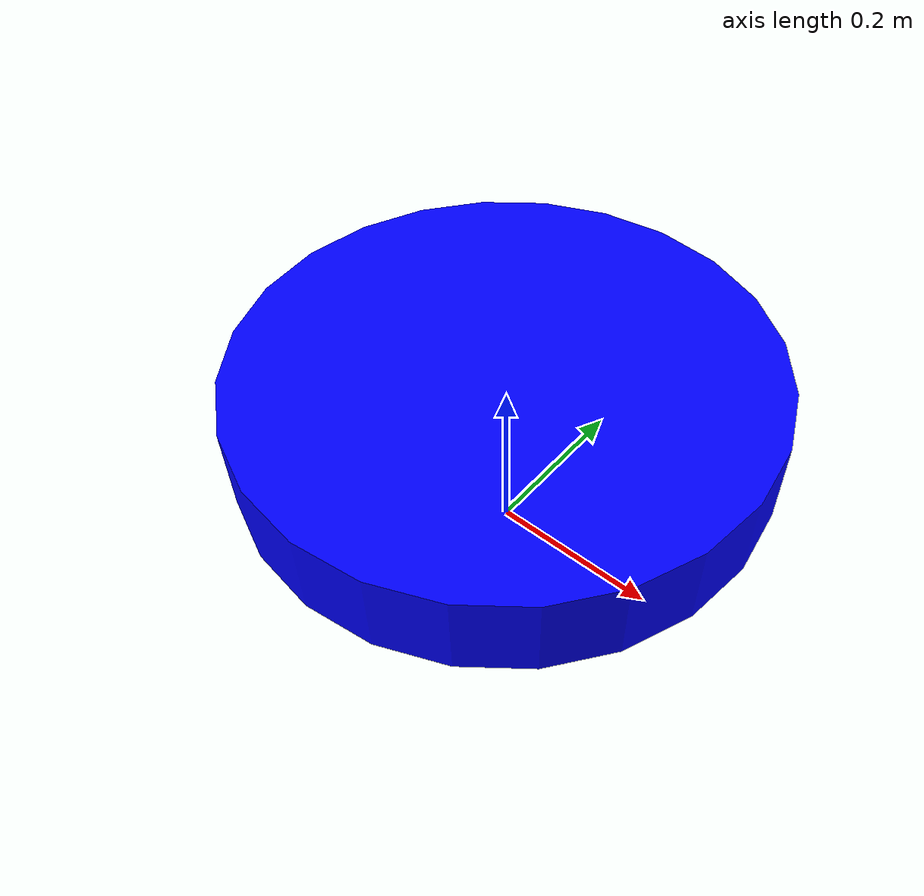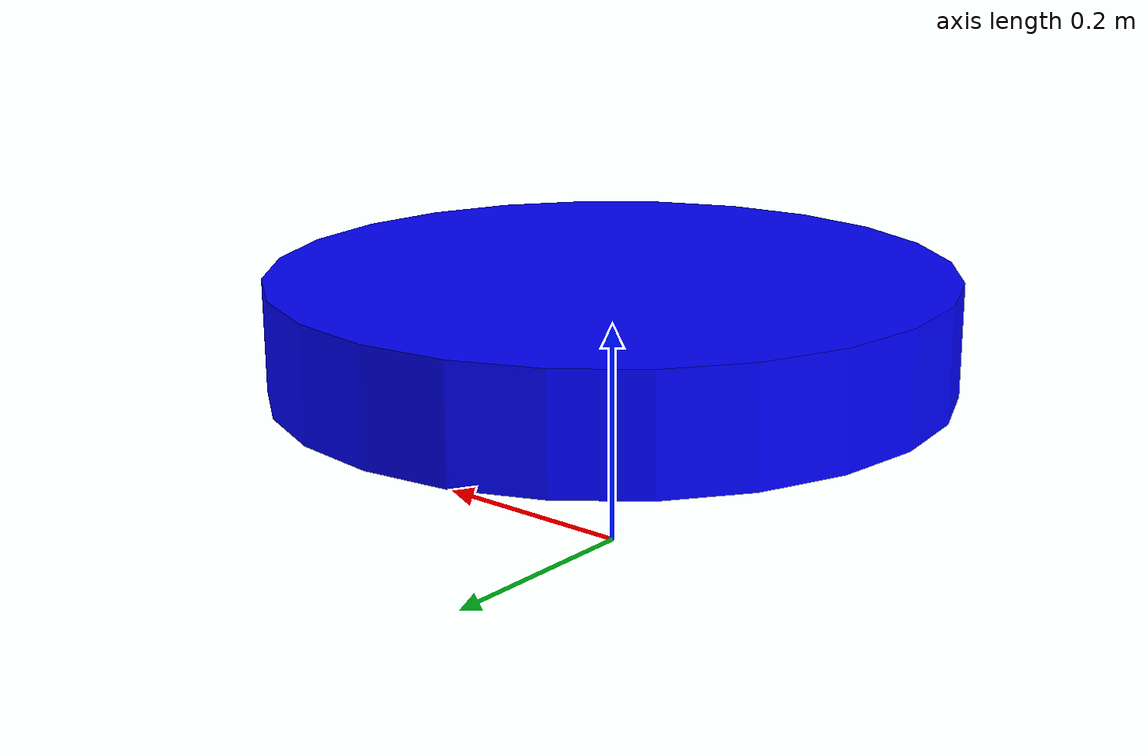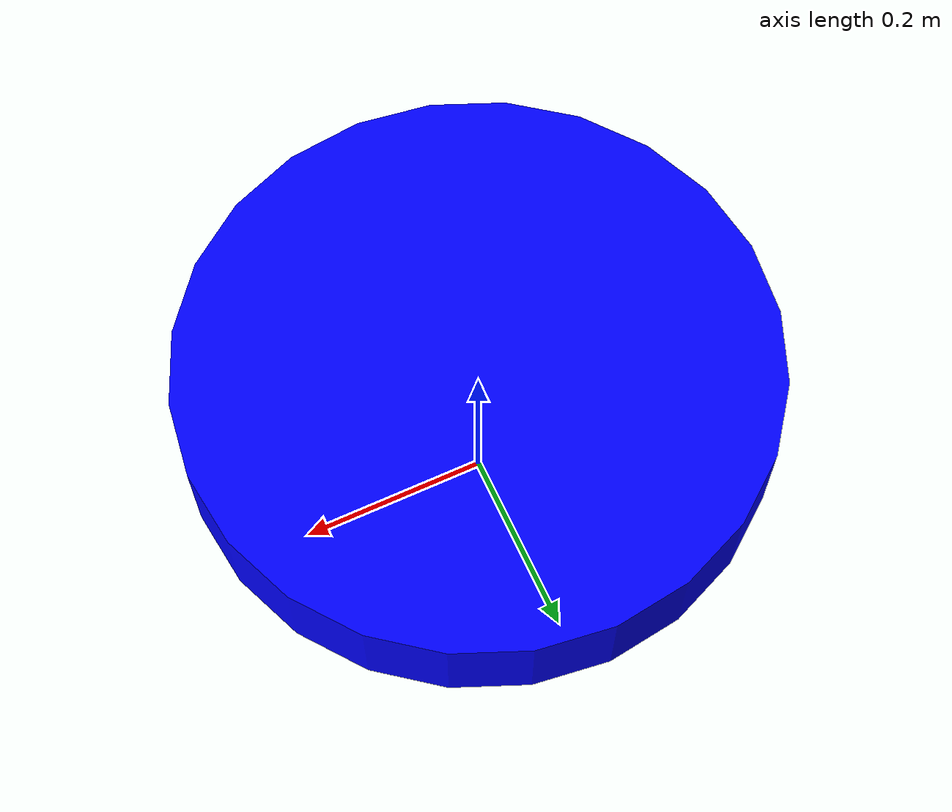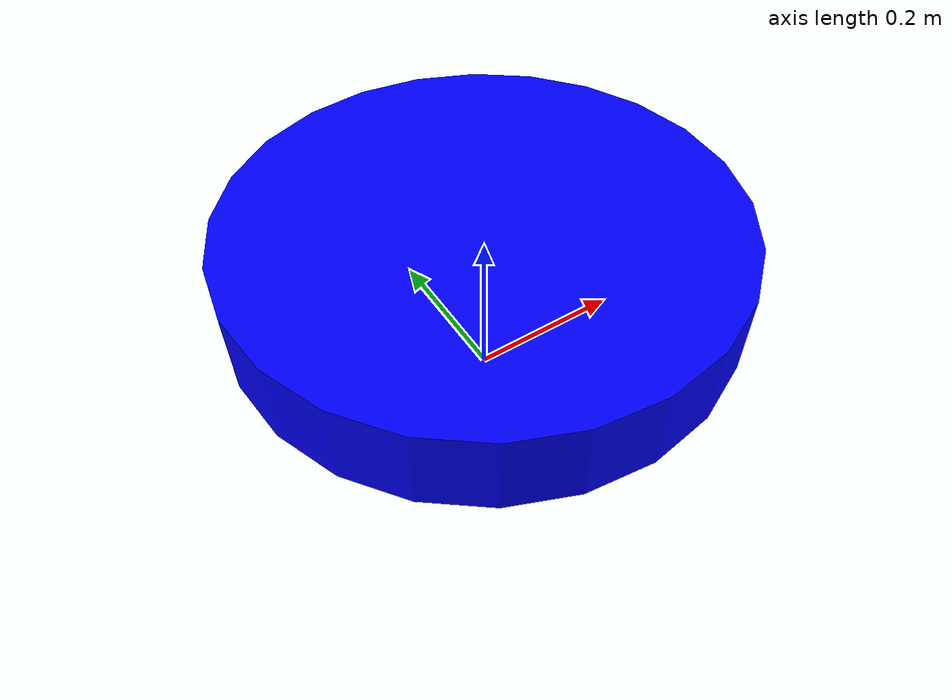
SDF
<?xml version="1.0" ?>
<sdf version="1.6">
  <model name="simple_drone">
    <static>false</static>
    <link name="base_link">
      <pose>0 0 0.2 0 0 0</pose>
      <inertial>
        <mass>1.0</mass>
        <inertia>
          <ixx>0.1</ixx>
          <iyy>0.1</iyy>
          <izz>0.1</izz>
        </inertia>
      </inertial>
      <collision name="collision">
        <geometry>
          <cylinder>
            <radius>0.3</radius>
            <length>0.1</length>
          </cylinder>
        </geometry>
      </collision>
      <visual name="visual">
        <geometry>
          <cylinder>
            <radius>0.3</radius>
            <length>0.1</length>
          </cylinder>
        </geometry>
        <material>
          <ambient>0 0 1 1</ambient>
        </material>
      </visual>
    </link>

    <plugin name="velocity_controller" filename="libVelocityControlPlugin.so">
      <link_name>base_link</link_name>
      <robot_namespace>/drone</robot_namespace>
      <topic>/cmd_vel</topic>
    </plugin>
  </model>
</sdf>
